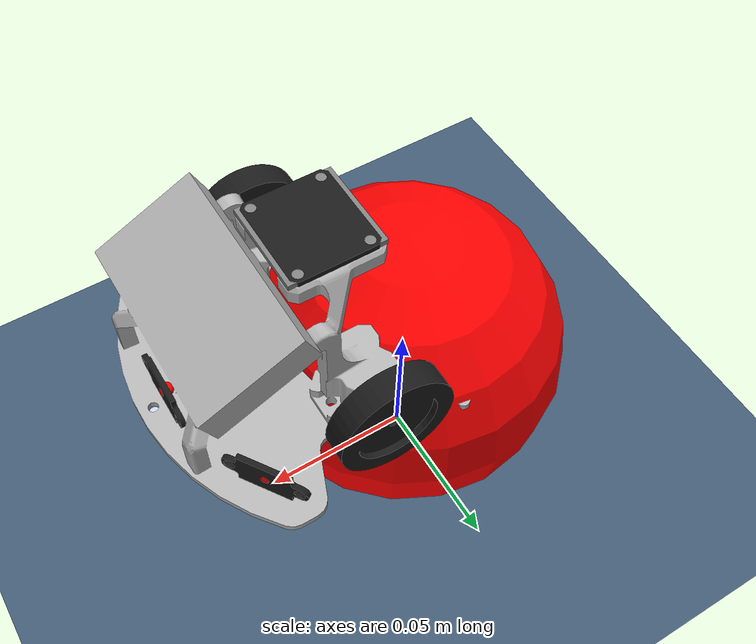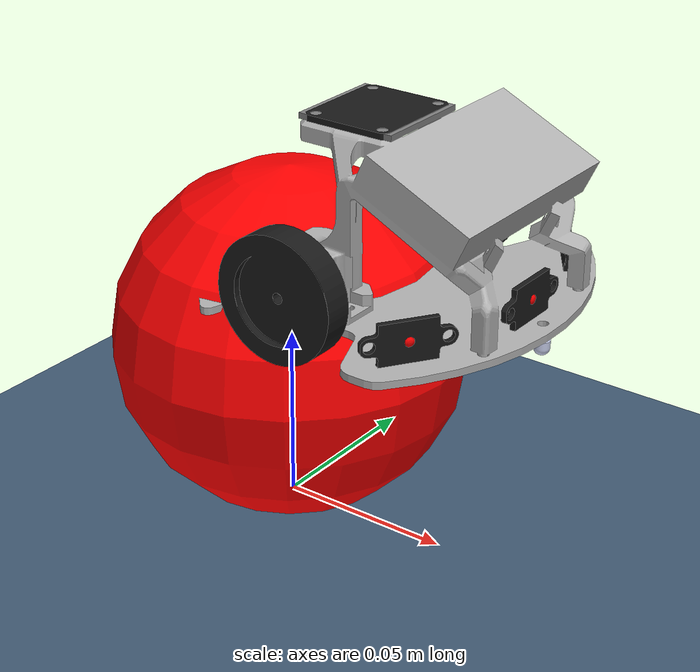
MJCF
<?xml version="1.0" encoding="UTF-8"?>
<mujoco model="Heuristic-01">

  <compiler angle="radian"
            coordinate="local"
            meshdir="../meshes"
            autolimits="true"/>

  <option timestep="0.005"
          gravity="0 0 -9.81"
          integrator="implicitfast"/>

  <default>
    <geom contype="1" conaffinity="1" friction="0.8 0.005 0.0001"/>
  </default>

  <asset>
    <mesh name="base_link" file="base_link.STL"/>
    <mesh name="right_wheel_link" file="right_wheel_link.STL"/>
    <mesh name="left_wheel_link" file="left_wheel_link.STL"/>
    <mesh name="caster_link" file="caster_link.STL"/>
    <mesh name="tof_front_link" file="tof_front_link.STL"/>
    <mesh name="tof_left_link" file="tof_left_link.STL"/>
    <mesh name="tof_right_link" file="tof_right_link.STL"/>
    <mesh name="imu_link" file="imu_link.STL"/>

    <texture type="skybox"
             builtin="gradient"
             rgb1="0.5 0.7 1"
             rgb2="0.95 0.95 1"
             width="256"
             height="256"/>

    <!-- Use built-in checker pattern to create grid texture -->
    <texture name="grid"
             type="2d"
             builtin="checker"
             rgb1="0.2 0.3 0.4"
             rgb2="0.3 0.4 0.5"
             width="256"
             height="256"
             mark="cross"
             markrgb="0.8 0.8 0.8"/>

    <!-- Create a grid material from the grid texture  -->
    <material name="grid"
              texture="grid"
              texrepeat="5 5"
              reflectance="0"
              specular="0"
              shininess="0"/>
  </asset>

  <!-- Prevent chassis-to-wheel mesh overlap from causing physics instabilities -->
  <contact>
    <exclude body1="robot_base" body2="left_wheel_link"/>
    <exclude body1="robot_base" body2="right_wheel_link"/>
  </contact>

  <worldbody>

    <site name="target_waypoint" type="sphere" size="0.05" rgba="1 0 0 1" pos="0 0 0.05"/>
    <light pos="0 0 12"
           dir="0 0 -1"
           diffuse="0.8 0.8 0.8"/>
    <geom name="floor"
          type="plane"
          size="5 5 0.1"
          material="grid"/>

    <!-- Main Robot Body -->
    <body name="robot_base" pos="0 0.05 0.05">
      <freejoint/>

      <!-- Static Base Geoms -->
      <geom type="mesh" rgba="0.7 0.7 0.7 1" mesh="base_link"/>
      <geom pos="0.075206 -0.0514149 0.0329529" quat="0.5 0.5 0.5 0.5" type="mesh" rgba="0.1 0.1 0.1 1" mesh="tof_front_link"/>
      <geom pos="0.064132 -0.0154935 0.0329529" quat="0.331967 0.331967 0.624338 0.624338" type="mesh" rgba="0.1 0.1 0.1 1" mesh="tof_left_link"/>
      <geom pos="0.0642998 -0.0873876 0.0329529" quat="0.624338 0.624338 0.331967 0.331967" type="mesh" rgba="0.1 0.1 0.1 1" mesh="tof_right_link"/>
      <geom pos="-0.180386 -0.0764647 0.0707029" quat="0.707107 0.707107 0 0" type="mesh" rgba="0.1 0.1 0.1 1" mesh="imu_link"/>

      <site name="imu_site"
            type="box"
            pos="0.0295 -0.0515 0.07150"
            quat="-1 0 0 -1"
            size="0.014 0.014 0.0008 "/>

      <!-- Front ToF Site -->
      <site name="tof_front_site"
            pos="0.075206 -0.0514149 0.0329529"
            quat="0.5 0.5 0.5 0.5"
            size="0.002"
            rgba="1 0 0 1"/>

      <!-- Left ToF Site -->
      <site name="tof_left_site"
            pos="0.064132 -0.0154935 0.0329529"
            quat="0.331967 0.331967 0.624338 0.624338"
            size="0.002"
            rgba="1 0 0 1"/>

      <!-- Right ToF Site -->
      <site name="tof_right_site"
            pos="0.0642998 -0.0873876 0.0329529"
            quat="0.624338 0.624338 0.331967 0.331967"
            size="0.002"
            rgba="1 0 0 1"/>

      <geom pos="0.0799822 -0.0515649 0.019"
            quat="0.707107 0.707107 0 0"
            type="mesh"
            rgba="0.796078 0.823529 0.937255 1"
            mesh="caster_link"
            friction="0.001 0.0001 0.0001"/>

      <!-- Right Wheel Body with Joint -->
      <body name="right_wheel_link" pos="0.0295396 -0.0865649 0.0354529" quat="0.707107 0.707107 0 0">

        <inertial pos="0 0 0.00357122"
                  quat="0.5 0.5 -0.5 0.5"
                  mass="0.00784958"
                  diaginertia="1.22063e-06 6.46389e-07 6.46389e-07"/>

        <!-- FIX 1: Aligned joint axis polarity with body quaternion orientation -->
        <joint name="right_wheel_joint"
               type="hinge"
               axis="0 0 -1"
               damping="0.001"
               frictionloss="0.001"
               armature="4.5e-5"/>

        <geom type="mesh"
              mesh="right_wheel_link"
              rgba="0.1 0.1 0.1 1.0"
              contype="0"
              conaffinity="0"/>

        <geom type="cylinder"
              size="0.017 0.004"
              rgba="1 0 0 0"
              contype="1"
              conaffinity="1"
              friction="0.8 0.005 0.0001"/>
      </body>

      <!-- Left Wheel Body with Joint -->
      <body name="left_wheel_link" pos="0.0295396 -0.00856491 0.0354529" quat="0 0 0.707107 0.707107">

        <inertial pos="0 0 -0.00442878"
                  quat="0.5 0.5 -0.5 0.5"
                  mass="0.00784958"
                  diaginertia="1.22063e-06 6.46389e-07 6.46389e-07"/>

        <joint name="left_wheel_joint"
               type="hinge"
               axis="0 0 1"
               damping="0.001"
               frictionloss="0.001"
               armature="4.5e-5"/>

        <!-- Render STL Visual Mesh (No Contact Collision) -->
        <geom type="mesh"
              mesh="left_wheel_link"
              rgba="0.1 0.1 0.1 1.0"
              contype="0"
              conaffinity="0"/>

        <!-- Smooth Physics Cylinder (Diameter 34mm / Radius 17mm) -->
        <geom type="cylinder"
              size="0.017 0.004"
              rgba="1 0 0 0"
              contype="1"
              conaffinity="1"
              friction="0.8 0.005 0.0001"/>
      </body>

    </body>
  </worldbody>

  <!-- Velocity Actuators for smooth wheel motion -->
  <actuator>
    <velocity name="left_motor"
              joint="left_wheel_joint"
              gear="0.05"
              ctrlrange="-1 1"/>

    <velocity name="right_motor"
              joint="right_wheel_joint"
              gear="0.05"
              ctrlrange="-1 1"/>
  </actuator>

  <sensor>
    <accelerometer name="imu_accel" site="imu_site"/>
    <gyro name="imu_gyro" site="imu_site"/>
    <magnetometer name="imu_mag" site="imu_site"/>
    <framequat name="imu_orientation" objtype="site" objname="imu_site"/>

    <!-- ToF Distance Sensors (Outputs distance in meters along +Z axis) -->
    <rangefinder name="tof_front" site="tof_front_site" cutoff="1.0"/>
    <rangefinder name="tof_left" site="tof_left_site" cutoff="1.0"/>
    <rangefinder name="tof_right" site="tof_right_site" cutoff="1.0"/>

    <!-- Wheel encoders (joint position and velocity) -->
    <jointpos name="left_wheel_pos" joint="left_wheel_joint"/>
    <jointpos name="right_wheel_pos" joint="right_wheel_joint"/>
    <jointvel name="left_wheel_vel" joint="left_wheel_joint"/>
    <jointvel name="right_wheel_vel" joint="right_wheel_joint"/>
  </sensor>
</mujoco>
